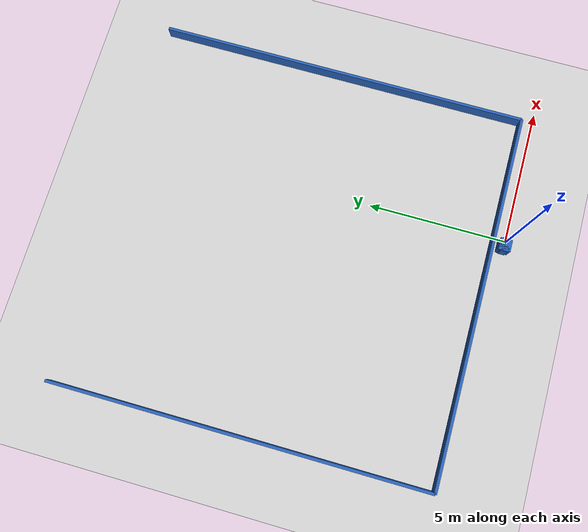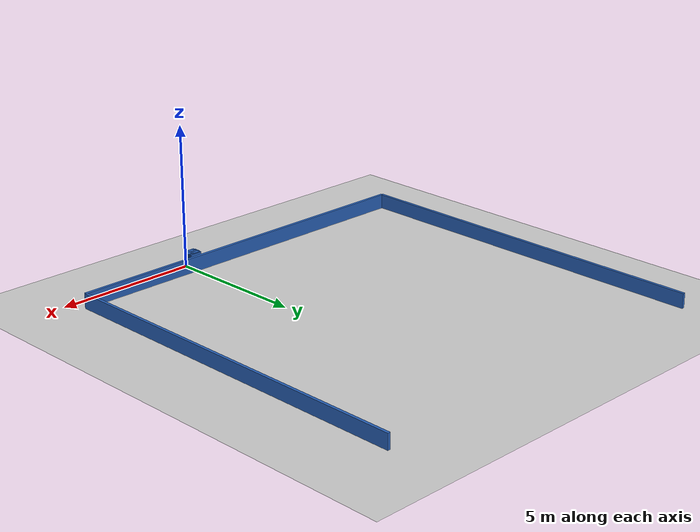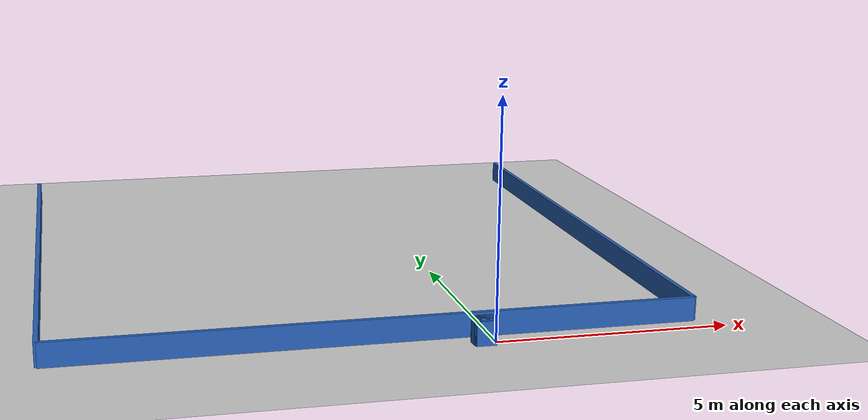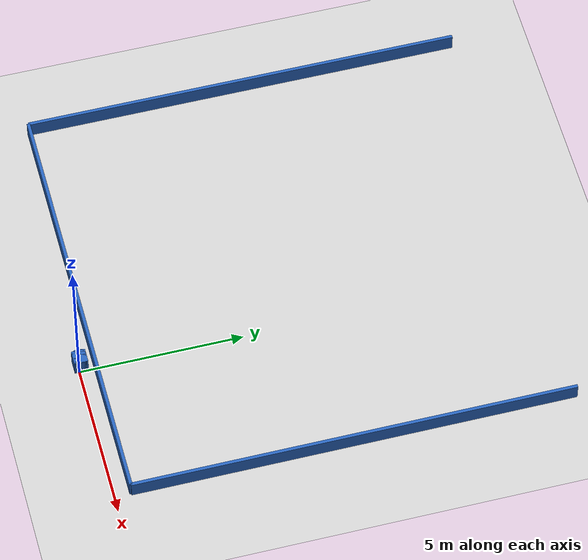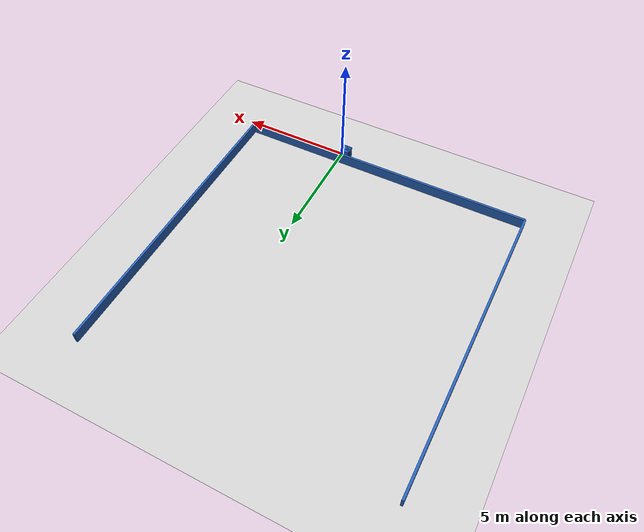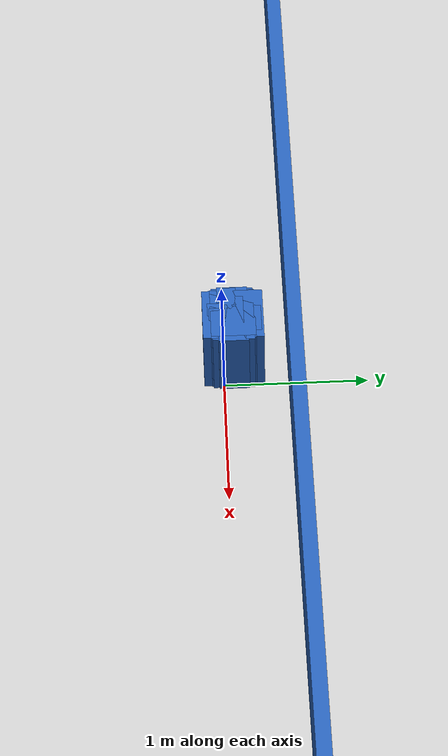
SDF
<?xml version="1.0" ?>
    <sdf version="1.5">
      <world name="default">
        <!-- A global light source -->
        <include>
          <uri>model://sun</uri>
        </include>
        <!-- A ground plane -->
        <include>
          <uri>model://ground_plane</uri>
        </include>

    <model name='libopen_space_final_T2B_90_95'>
      <static>1</static>
      <pose frame=''>-0.225000 0.075000 0.000000 0.000000 0.000000 0.000000</pose>
      <link name='link'>
        <inertial>
          <mass>1</mass>
          <inertia>
            <ixx>0.145833</ixx>
            <ixy>0</ixy>
            <ixz>0</ixz>
            <iyy>0.145833</iyy>
            <iyz>0</iyz>
            <izz>0.125</izz>
          </inertia>
        </inertial>
        <collision name='collision'>
          <geometry>
            <box>
              <size>0.48 0.13 1</size>
            </box>
          </geometry>
          <max_contacts>10</max_contacts>
          <surface>
            <contact>
              <ode/>
            </contact>
            <bounce/>
            <friction>
              <torsional>
                <ode/>
              </torsional>
              <ode/>
            </friction>
          </surface>
        </collision>
        <visual name='visual'>
          <geometry>
            <box>
              <size>0.48 0.13 1</size>
            </box>
          </geometry>
	    <material>
              <ambient>0.152000 0.379000 0.720000 1</ambient>
	      <diffuse>0.152000 0.379000 0.720000 1</diffuse>
          </material>
          <material>
            <script>
              <name>Gazebo/Grey</name>
              <uri>file://media/materials/scripts/gazebo.material</uri>
            </script>
          </material>
        </visual>
        <self_collide>0</self_collide>
        <kinematic>0</kinematic>
        <gravity>1</gravity>
      </link>
      <plugin name='libopen_space_final_T2B_90_95' filename='libopen_space_final_T2B_90_95.so'/>
    </model>

    <model name='libopen_space_final_T2B_123_20'>
      <static>1</static>
      <pose frame=''>-0.225000 0.075000 0.000000 0.000000 0.000000 0.000000</pose>
      <link name='link'>
        <inertial>
          <mass>1</mass>
          <inertia>
            <ixx>0.145833</ixx>
            <ixy>0</ixy>
            <ixz>0</ixz>
            <iyy>0.145833</iyy>
            <iyz>0</iyz>
            <izz>0.125</izz>
          </inertia>
        </inertial>
        <collision name='collision'>
          <geometry>
            <box>
              <size>0.32 0.15 1</size>
            </box>
          </geometry>
          <max_contacts>10</max_contacts>
          <surface>
            <contact>
              <ode/>
            </contact>
            <bounce/>
            <friction>
              <torsional>
                <ode/>
              </torsional>
              <ode/>
            </friction>
          </surface>
        </collision>
        <visual name='visual'>
          <geometry>
            <box>
              <size>0.32 0.15 1</size>
            </box>
          </geometry>
	    <material>
              <ambient>0.152000 0.379000 0.720000 1</ambient>
	      <diffuse>0.152000 0.379000 0.720000 1</diffuse>
          </material>
          <material>
            <script>
              <name>Gazebo/Grey</name>
              <uri>file://media/materials/scripts/gazebo.material</uri>
            </script>
          </material>
        </visual>
        <self_collide>0</self_collide>
        <kinematic>0</kinematic>
        <gravity>1</gravity>
      </link>
      <plugin name='libopen_space_final_T2B_123_20' filename='libopen_space_final_T2B_123_20.so'/>
    </model>

    <model name='libopen_space_final_T2B_140_77'>
      <static>1</static>
      <pose frame=''>-0.225000 0.075000 0.000000 0.000000 0.000000 0.000000</pose>
      <link name='link'>
        <inertial>
          <mass>1</mass>
          <inertia>
            <ixx>0.145833</ixx>
            <ixy>0</ixy>
            <ixz>0</ixz>
            <iyy>0.145833</iyy>
            <iyz>0</iyz>
            <izz>0.125</izz>
          </inertia>
        </inertial>
        <collision name='collision'>
          <geometry>
            <box>
              <size>0.43 0.42 1</size>
            </box>
          </geometry>
          <max_contacts>10</max_contacts>
          <surface>
            <contact>
              <ode/>
            </contact>
            <bounce/>
            <friction>
              <torsional>
                <ode/>
              </torsional>
              <ode/>
            </friction>
          </surface>
        </collision>
        <visual name='visual'>
          <geometry>
            <box>
              <size>0.43 0.42 1</size>
            </box>
          </geometry>
	    <material>
              <ambient>0.152000 0.379000 0.720000 1</ambient>
	      <diffuse>0.152000 0.379000 0.720000 1</diffuse>
          </material>
          <material>
            <script>
              <name>Gazebo/Grey</name>
              <uri>file://media/materials/scripts/gazebo.material</uri>
            </script>
          </material>
        </visual>
        <self_collide>0</self_collide>
        <kinematic>0</kinematic>
        <gravity>1</gravity>
      </link>
      <plugin name='libopen_space_final_T2B_140_77' filename='libopen_space_final_T2B_140_77.so'/>
    </model>

    <model name='libopen_space_final_T2B_79_93'>
      <static>1</static>
      <pose frame=''>-0.225000 0.075000 0.000000 0.000000 0.000000 0.000000</pose>
      <link name='link'>
        <inertial>
          <mass>1</mass>
          <inertia>
            <ixx>0.145833</ixx>
            <ixy>0</ixy>
            <ixz>0</ixz>
            <iyy>0.145833</iyy>
            <iyz>0</iyz>
            <izz>0.125</izz>
          </inertia>
        </inertial>
        <collision name='collision'>
          <geometry>
            <box>
              <size>0.38 0.29 1</size>
            </box>
          </geometry>
          <max_contacts>10</max_contacts>
          <surface>
            <contact>
              <ode/>
            </contact>
            <bounce/>
            <friction>
              <torsional>
                <ode/>
              </torsional>
              <ode/>
            </friction>
          </surface>
        </collision>
        <visual name='visual'>
          <geometry>
            <box>
              <size>0.38 0.29 1</size>
            </box>
          </geometry>
	    <material>
              <ambient>0.152000 0.379000 0.720000 1</ambient>
	      <diffuse>0.152000 0.379000 0.720000 1</diffuse>
          </material>
          <material>
            <script>
              <name>Gazebo/Grey</name>
              <uri>file://media/materials/scripts/gazebo.material</uri>
            </script>
          </material>
        </visual>
        <self_collide>0</self_collide>
        <kinematic>0</kinematic>
        <gravity>1</gravity>
      </link>
      <plugin name='libopen_space_final_T2B_79_93' filename='libopen_space_final_T2B_79_93.so'/>
    </model>

    <model name='libopen_space_final_T2B_147_27'>
      <static>1</static>
      <pose frame=''>-0.225000 0.075000 0.000000 0.000000 0.000000 0.000000</pose>
      <link name='link'>
        <inertial>
          <mass>1</mass>
          <inertia>
            <ixx>0.145833</ixx>
            <ixy>0</ixy>
            <ixz>0</ixz>
            <iyy>0.145833</iyy>
            <iyz>0</iyz>
            <izz>0.125</izz>
          </inertia>
        </inertial>
        <collision name='collision'>
          <geometry>
            <box>
              <size>0.31 0.39 1</size>
            </box>
          </geometry>
          <max_contacts>10</max_contacts>
          <surface>
            <contact>
              <ode/>
            </contact>
            <bounce/>
            <friction>
              <torsional>
                <ode/>
              </torsional>
              <ode/>
            </friction>
          </surface>
        </collision>
        <visual name='visual'>
          <geometry>
            <box>
              <size>0.31 0.39 1</size>
            </box>
          </geometry>
	    <material>
              <ambient>0.152000 0.379000 0.720000 1</ambient>
	      <diffuse>0.152000 0.379000 0.720000 1</diffuse>
          </material>
          <material>
            <script>
              <name>Gazebo/Grey</name>
              <uri>file://media/materials/scripts/gazebo.material</uri>
            </script>
          </material>
        </visual>
        <self_collide>0</self_collide>
        <kinematic>0</kinematic>
        <gravity>1</gravity>
      </link>
      <plugin name='libopen_space_final_T2B_147_27' filename='libopen_space_final_T2B_147_27.so'/>
    </model>

    <model name='libopen_space_final_T2B_94_31'>
      <static>1</static>
      <pose frame=''>-0.225000 0.075000 0.000000 0.000000 0.000000 0.000000</pose>
      <link name='link'>
        <inertial>
          <mass>1</mass>
          <inertia>
            <ixx>0.145833</ixx>
            <ixy>0</ixy>
            <ixz>0</ixz>
            <iyy>0.145833</iyy>
            <iyz>0</iyz>
            <izz>0.125</izz>
          </inertia>
        </inertial>
        <collision name='collision'>
          <geometry>
            <box>
              <size>0.17 0.11 1</size>
            </box>
          </geometry>
          <max_contacts>10</max_contacts>
          <surface>
            <contact>
              <ode/>
            </contact>
            <bounce/>
            <friction>
              <torsional>
                <ode/>
              </torsional>
              <ode/>
            </friction>
          </surface>
        </collision>
        <visual name='visual'>
          <geometry>
            <box>
              <size>0.17 0.11 1</size>
            </box>
          </geometry>
	    <material>
              <ambient>0.152000 0.379000 0.720000 1</ambient>
	      <diffuse>0.152000 0.379000 0.720000 1</diffuse>
          </material>
          <material>
            <script>
              <name>Gazebo/Grey</name>
              <uri>file://media/materials/scripts/gazebo.material</uri>
            </script>
          </material>
        </visual>
        <self_collide>0</self_collide>
        <kinematic>0</kinematic>
        <gravity>1</gravity>
      </link>
      <plugin name='libopen_space_final_T2B_94_31' filename='libopen_space_final_T2B_94_31.so'/>
    </model>

    <model name='libopen_space_final_T2B_129_11'>
      <static>1</static>
      <pose frame=''>-0.225000 0.075000 0.000000 0.000000 0.000000 0.000000</pose>
      <link name='link'>
        <inertial>
          <mass>1</mass>
          <inertia>
            <ixx>0.145833</ixx>
            <ixy>0</ixy>
            <ixz>0</ixz>
            <iyy>0.145833</iyy>
            <iyz>0</iyz>
            <izz>0.125</izz>
          </inertia>
        </inertial>
        <collision name='collision'>
          <geometry>
            <box>
              <size>0.40 0.31 1</size>
            </box>
          </geometry>
          <max_contacts>10</max_contacts>
          <surface>
            <contact>
              <ode/>
            </contact>
            <bounce/>
            <friction>
              <torsional>
                <ode/>
              </torsional>
              <ode/>
            </friction>
          </surface>
        </collision>
        <visual name='visual'>
          <geometry>
            <box>
              <size>0.40 0.31 1</size>
            </box>
          </geometry>
	    <material>
              <ambient>0.152000 0.379000 0.720000 1</ambient>
	      <diffuse>0.152000 0.379000 0.720000 1</diffuse>
          </material>
          <material>
            <script>
              <name>Gazebo/Grey</name>
              <uri>file://media/materials/scripts/gazebo.material</uri>
            </script>
          </material>
        </visual>
        <self_collide>0</self_collide>
        <kinematic>0</kinematic>
        <gravity>1</gravity>
      </link>
      <plugin name='libopen_space_final_T2B_129_11' filename='libopen_space_final_T2B_129_11.so'/>
    </model>

    <model name='libopen_space_final_T2B_134_32'>
      <static>1</static>
      <pose frame=''>-0.225000 0.075000 0.000000 0.000000 0.000000 0.000000</pose>
      <link name='link'>
        <inertial>
          <mass>1</mass>
          <inertia>
            <ixx>0.145833</ixx>
            <ixy>0</ixy>
            <ixz>0</ixz>
            <iyy>0.145833</iyy>
            <iyz>0</iyz>
            <izz>0.125</izz>
          </inertia>
        </inertial>
        <collision name='collision'>
          <geometry>
            <box>
              <size>0.49 0.21 1</size>
            </box>
          </geometry>
          <max_contacts>10</max_contacts>
          <surface>
            <contact>
              <ode/>
            </contact>
            <bounce/>
            <friction>
              <torsional>
                <ode/>
              </torsional>
              <ode/>
            </friction>
          </surface>
        </collision>
        <visual name='visual'>
          <geometry>
            <box>
              <size>0.49 0.21 1</size>
            </box>
          </geometry>
	    <material>
              <ambient>0.152000 0.379000 0.720000 1</ambient>
	      <diffuse>0.152000 0.379000 0.720000 1</diffuse>
          </material>
          <material>
            <script>
              <name>Gazebo/Grey</name>
              <uri>file://media/materials/scripts/gazebo.material</uri>
            </script>
          </material>
        </visual>
        <self_collide>0</self_collide>
        <kinematic>0</kinematic>
        <gravity>1</gravity>
      </link>
      <plugin name='libopen_space_final_T2B_134_32' filename='libopen_space_final_T2B_134_32.so'/>
    </model>

    <model name='libopen_space_final_T2B_67_46'>
      <static>1</static>
      <pose frame=''>-0.225000 0.075000 0.000000 0.000000 0.000000 0.000000</pose>
      <link name='link'>
        <inertial>
          <mass>1</mass>
          <inertia>
            <ixx>0.145833</ixx>
            <ixy>0</ixy>
            <ixz>0</ixz>
            <iyy>0.145833</iyy>
            <iyz>0</iyz>
            <izz>0.125</izz>
          </inertia>
        </inertial>
        <collision name='collision'>
          <geometry>
            <box>
              <size>0.16 0.19 1</size>
            </box>
          </geometry>
          <max_contacts>10</max_contacts>
          <surface>
            <contact>
              <ode/>
            </contact>
            <bounce/>
            <friction>
              <torsional>
                <ode/>
              </torsional>
              <ode/>
            </friction>
          </surface>
        </collision>
        <visual name='visual'>
          <geometry>
            <box>
              <size>0.16 0.19 1</size>
            </box>
          </geometry>
	    <material>
              <ambient>0.152000 0.379000 0.720000 1</ambient>
	      <diffuse>0.152000 0.379000 0.720000 1</diffuse>
          </material>
          <material>
            <script>
              <name>Gazebo/Grey</name>
              <uri>file://media/materials/scripts/gazebo.material</uri>
            </script>
          </material>
        </visual>
        <self_collide>0</self_collide>
        <kinematic>0</kinematic>
        <gravity>1</gravity>
      </link>
      <plugin name='libopen_space_final_T2B_67_46' filename='libopen_space_final_T2B_67_46.so'/>
    </model>

    <model name='libopen_space_final_T2B_112_54'>
      <static>1</static>
      <pose frame=''>-0.225000 0.075000 0.000000 0.000000 0.000000 0.000000</pose>
      <link name='link'>
        <inertial>
          <mass>1</mass>
          <inertia>
            <ixx>0.145833</ixx>
            <ixy>0</ixy>
            <ixz>0</ixz>
            <iyy>0.145833</iyy>
            <iyz>0</iyz>
            <izz>0.125</izz>
          </inertia>
        </inertial>
        <collision name='collision'>
          <geometry>
            <box>
              <size>0.44 0.31 1</size>
            </box>
          </geometry>
          <max_contacts>10</max_contacts>
          <surface>
            <contact>
              <ode/>
            </contact>
            <bounce/>
            <friction>
              <torsional>
                <ode/>
              </torsional>
              <ode/>
            </friction>
          </surface>
        </collision>
        <visual name='visual'>
          <geometry>
            <box>
              <size>0.44 0.31 1</size>
            </box>
          </geometry>
	    <material>
              <ambient>0.152000 0.379000 0.720000 1</ambient>
	      <diffuse>0.152000 0.379000 0.720000 1</diffuse>
          </material>
          <material>
            <script>
              <name>Gazebo/Grey</name>
              <uri>file://media/materials/scripts/gazebo.material</uri>
            </script>
          </material>
        </visual>
        <self_collide>0</self_collide>
        <kinematic>0</kinematic>
        <gravity>1</gravity>
      </link>
      <plugin name='libopen_space_final_T2B_112_54' filename='libopen_space_final_T2B_112_54.so'/>
    </model>

    <model name='libopen_space_final_T2B_112_28'>
      <static>1</static>
      <pose frame=''>-0.225000 0.075000 0.000000 0.000000 0.000000 0.000000</pose>
      <link name='link'>
        <inertial>
          <mass>1</mass>
          <inertia>
            <ixx>0.145833</ixx>
            <ixy>0</ixy>
            <ixz>0</ixz>
            <iyy>0.145833</iyy>
            <iyz>0</iyz>
            <izz>0.125</izz>
          </inertia>
        </inertial>
        <collision name='collision'>
          <geometry>
            <box>
              <size>0.11 0.33 1</size>
            </box>
          </geometry>
          <max_contacts>10</max_contacts>
          <surface>
            <contact>
              <ode/>
            </contact>
            <bounce/>
            <friction>
              <torsional>
                <ode/>
              </torsional>
              <ode/>
            </friction>
          </surface>
        </collision>
        <visual name='visual'>
          <geometry>
            <box>
              <size>0.11 0.33 1</size>
            </box>
          </geometry>
	    <material>
              <ambient>0.152000 0.379000 0.720000 1</ambient>
	      <diffuse>0.152000 0.379000 0.720000 1</diffuse>
          </material>
          <material>
            <script>
              <name>Gazebo/Grey</name>
              <uri>file://media/materials/scripts/gazebo.material</uri>
            </script>
          </material>
        </visual>
        <self_collide>0</self_collide>
        <kinematic>0</kinematic>
        <gravity>1</gravity>
      </link>
      <plugin name='libopen_space_final_T2B_112_28' filename='libopen_space_final_T2B_112_28.so'/>
    </model>

    <model name='libopen_space_final_T2B_103_85'>
      <static>1</static>
      <pose frame=''>-0.225000 0.075000 0.000000 0.000000 0.000000 0.000000</pose>
      <link name='link'>
        <inertial>
          <mass>1</mass>
          <inertia>
            <ixx>0.145833</ixx>
            <ixy>0</ixy>
            <ixz>0</ixz>
            <iyy>0.145833</iyy>
            <iyz>0</iyz>
            <izz>0.125</izz>
          </inertia>
        </inertial>
        <collision name='collision'>
          <geometry>
            <box>
              <size>0.20 0.35 1</size>
            </box>
          </geometry>
          <max_contacts>10</max_contacts>
          <surface>
            <contact>
              <ode/>
            </contact>
            <bounce/>
            <friction>
              <torsional>
                <ode/>
              </torsional>
              <ode/>
            </friction>
          </surface>
        </collision>
        <visual name='visual'>
          <geometry>
            <box>
              <size>0.20 0.35 1</size>
            </box>
          </geometry>
	    <material>
              <ambient>0.152000 0.379000 0.720000 1</ambient>
	      <diffuse>0.152000 0.379000 0.720000 1</diffuse>
          </material>
          <material>
            <script>
              <name>Gazebo/Grey</name>
              <uri>file://media/materials/scripts/gazebo.material</uri>
            </script>
          </material>
        </visual>
        <self_collide>0</self_collide>
        <kinematic>0</kinematic>
        <gravity>1</gravity>
      </link>
      <plugin name='libopen_space_final_T2B_103_85' filename='libopen_space_final_T2B_103_85.so'/>
    </model>

    <model name='libopen_space_final_T2B_122_2'>
      <static>1</static>
      <pose frame=''>-0.225000 0.075000 0.000000 0.000000 0.000000 0.000000</pose>
      <link name='link'>
        <inertial>
          <mass>1</mass>
          <inertia>
            <ixx>0.145833</ixx>
            <ixy>0</ixy>
            <ixz>0</ixz>
            <iyy>0.145833</iyy>
            <iyz>0</iyz>
            <izz>0.125</izz>
          </inertia>
        </inertial>
        <collision name='collision'>
          <geometry>
            <box>
              <size>0.47 0.29 1</size>
            </box>
          </geometry>
          <max_contacts>10</max_contacts>
          <surface>
            <contact>
              <ode/>
            </contact>
            <bounce/>
            <friction>
              <torsional>
                <ode/>
              </torsional>
              <ode/>
            </friction>
          </surface>
        </collision>
        <visual name='visual'>
          <geometry>
            <box>
              <size>0.47 0.29 1</size>
            </box>
          </geometry>
	    <material>
              <ambient>0.152000 0.379000 0.720000 1</ambient>
	      <diffuse>0.152000 0.379000 0.720000 1</diffuse>
          </material>
          <material>
            <script>
              <name>Gazebo/Grey</name>
              <uri>file://media/materials/scripts/gazebo.material</uri>
            </script>
          </material>
        </visual>
        <self_collide>0</self_collide>
        <kinematic>0</kinematic>
        <gravity>1</gravity>
      </link>
      <plugin name='libopen_space_final_T2B_122_2' filename='libopen_space_final_T2B_122_2.so'/>
    </model>

        <model name='bottom_wall'>
          <static>1</static>
          <pose frame=''>-2.25 0.5 0.000000 0.000000 0.000000 1.57079632</pose>
          <link name='link'>
            <inertial>
            <mass>1</mass>
            <inertia>
              <ixx>0.145833</ixx>
              <ixy>0</ixy>
              <ixz>0</ixz>
              <iyy>0.145833</iyy>
              <iyz>0</iyz>
              <izz>0.125</izz>
            </inertia>
            </inertial>
            <collision name='collision'>
            <geometry>
              <box>
              <size>0.1 13.5 1</size>
              </box>
            </geometry>
            <max_contacts>10</max_contacts>
            <surface>
              <contact>
              <ode/>
              </contact>
              <bounce/>
              <friction>
              <torsional>
                <ode/>
              </torsional>
              <ode/>
              </friction>
            </surface>
            </collision>
            <visual name='visual'>
            <geometry>
              <box>
              <size>0.1 13.5 1</size>
              </box>
            </geometry>
            <material>
              <ambient>0.152000 0.379000 0.720000 1</ambient>
            <diffuse>0.152000 0.379000 0.720000 1</diffuse>
            </material>
            <material>
              <script>
              <name>Gazebo/Grey</name>
              <uri>file://media/materials/scripts/gazebo.material</uri>
              </script>
            </material>
            </visual>
            <self_collide>0</self_collide>
            <kinematic>0</kinematic>
            <gravity>1</gravity>
          </link>
        </model>

        <model name='left_wall'>
          <static>1</static>
          <pose frame=''>-9 7.25 0.000000 0.000000 0.000000 0.000000</pose>
          <link name='link'>
            <inertial>
            <mass>1</mass>
            <inertia>
              <ixx>0.145833</ixx>
              <ixy>0</ixy>
              <ixz>0</ixz>
              <iyy>0.145833</iyy>
              <iyz>0</iyz>
              <izz>0.125</izz>
            </inertia>
            </inertial>
            <collision name='collision'>
            <geometry>
              <box>
              <size>0.1 13.5 1</size>
              </box>
            </geometry>
            <max_contacts>10</max_contacts>
            <surface>
              <contact>
              <ode/>
              </contact>
              <bounce/>
              <friction>
              <torsional>
                <ode/>
              </torsional>
              <ode/>
              </friction>
            </surface>
            </collision>
            <visual name='visual'>
            <geometry>
              <box>
              <size>0.1 13.5 1</size>
              </box>
            </geometry>
            <material>
              <ambient>0.152000 0.379000 0.720000 1</ambient>
            <diffuse>0.152000 0.379000 0.720000 1</diffuse>
            </material>
            <material>
              <script>
              <name>Gazebo/Grey</name>
              <uri>file://media/materials/scripts/gazebo.material</uri>
              </script>
            </material>
            </visual>
            <self_collide>0</self_collide>
            <kinematic>0</kinematic>
            <gravity>1</gravity>
          </link>
        </model>

        <model name='right_wall'>
          <static>1</static>
          <pose frame=''>4.5 7.25 0.000000 0.000000 0.000000 0.000000</pose>
          <link name='link'>
            <inertial>
            <mass>1</mass>
            <inertia>
              <ixx>0.145833</ixx>
              <ixy>0</ixy>
              <ixz>0</ixz>
              <iyy>0.145833</iyy>
              <iyz>0</iyz>
              <izz>0.125</izz>
            </inertia>
            </inertial>
            <collision name='collision'>
            <geometry>
              <box>
              <size>0.1 13.5 1</size>
              </box>
            </geometry>
            <max_contacts>10</max_contacts>
            <surface>
              <contact>
              <ode/>
              </contact>
              <bounce/>
              <friction>
              <torsional>
                <ode/>
              </torsional>
              <ode/>
              </friction>
            </surface>
            </collision>
            <visual name='visual'>
            <geometry>
              <box>
              <size>0.1 13.5 1</size>
              </box>
            </geometry>
            <material>
              <ambient>0.152000 0.379000 0.720000 1</ambient>
            <diffuse>0.152000 0.379000 0.720000 1</diffuse>
            </material>
            <material>
              <script>
              <name>Gazebo/Grey</name>
              <uri>file://media/materials/scripts/gazebo.material</uri>
              </script>
            </material>
            </visual>
            <self_collide>0</self_collide>
            <kinematic>0</kinematic>
            <gravity>1</gravity>
          </link>
        </model>

      </world>
    </sdf>"
